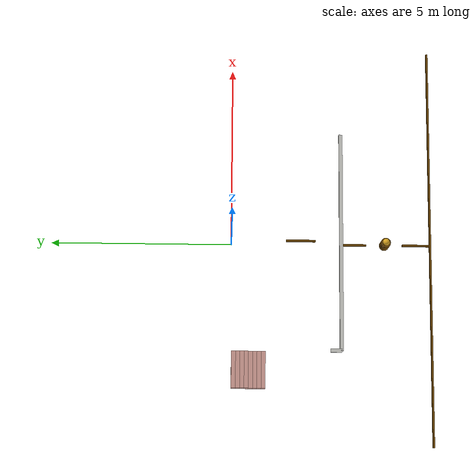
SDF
<sdf version="1.7">
 <world name="robocon2027_arena">
  <model name="mustika_pillar">
   <static>1</static>
   <pose>0 -4.25 0.25 0 -0 0</pose>
   <link name="link">
    <collision name="col">
     <geometry><cylinder><radius>0.135</radius><length>0.5</length></cylinder></geometry>
    </collision>
    <visual name="vis">
     <geometry><cylinder><radius>0.135</radius><length>0.5</length></cylinder></geometry>
     <material>
      <ambient>0.392 0.243 0 1</ambient>
      <diffuse>0.392 0.243 0 1</diffuse>
      <specular>0.04 0.04 0.04 1</specular>
      <emissive>0 0 0 1</emissive>
     </material>
    </visual>
   </link>
  </model>
  <model name="mustika_ball">
   <static>1</static>
   <pose>0 -4.25 0.6 0 -0 0</pose>
   <link name="link">
    <inertial>
     <mass>0.27</mass>
     <inertia><ixx>0.00108</ixx><iyy>0.00108</iyy><izz>0.00108</izz><ixy>0</ixy><ixz>0</ixz><iyz>0</iyz></inertia>
    </inertial>
    <collision name="col"><geometry><sphere><radius>0.1</radius></sphere></geometry></collision>
    <visual name="vis">
     <geometry><sphere><radius>0.1</radius></sphere></geometry>
     <material>
      <ambient>0.855 0.647 0.125 1</ambient>
      <diffuse>0.855 0.647 0.125 1</diffuse>
      <specular>0.04 0.04 0.04 1</specular>
      <emissive>0 0 0 1</emissive>
     </material>
    </visual>
   </link>
  </model>
  <model name="fence_pS">
   <static>1</static>
   <pose>0 -5.525 0.05 0 -0 0</pose>
   <link name="link">
    <collision name="col"><geometry><box><size>11.1 0.05 0.1</size></box></geometry></collision>
    <visual name="vis">
     <geometry><box><size>11.1 0.05 0.1</size></box></geometry>
     <material>
      <ambient>0.392 0.243 0 1</ambient>
      <diffuse>0.392 0.243 0 1</diffuse>
      <specular>0.04 0.04 0.04 1</specular>
      <emissive>0 0 0 1</emissive>
     </material>
    </visual>
   </link>
  </model>
  <model name="gdiv_2">
   <static>1</static>
   <pose>0 -3.375 0.05 0 -0 0</pose>
   <link name="link">
    <collision name="col"><geometry><box><size>0.05 0.75 0.1</size></box></geometry></collision>
    <visual name="vis">
     <geometry><box><size>0.05 0.75 0.1</size></box></geometry>
     <material>
      <ambient>0.392 0.243 0 1</ambient>
      <diffuse>0.392 0.243 0 1</diffuse>
      <specular>0.04 0.04 0.04 1</specular>
      <emissive>0 0 0 1</emissive>
     </material>
    </visual>
   </link>
  </model>
  <model name="gdiv_3">
   <static>1</static>
   <pose>0 -5.125 0.05 0 -0 0</pose>
   <link name="link">
    <collision name="col"><geometry><box><size>0.05 0.75 0.1</size></box></geometry></collision>
    <visual name="vis">
     <geometry><box><size>0.05 0.75 0.1</size></box></geometry>
     <material>
      <ambient>0.392 0.243 0 1</ambient>
      <diffuse>0.392 0.243 0 1</diffuse>
      <specular>0.04 0.04 0.04 1</specular>
      <emissive>0 0 0 1</emissive>
     </material>
    </visual>
   </link>
  </model>
  <model name="ddiv_1">
   <static>1</static>
   <pose>0 -1.9 0.65 0 -0 0</pose>
   <link name="link">
    <collision name="col"><geometry><box><size>0.05 0.8 0.1</size></box></geometry></collision>
    <visual name="vis">
     <geometry><box><size>0.05 0.8 0.1</size></box></geometry>
     <material>
      <ambient>0.392 0.243 0 1</ambient>
      <diffuse>0.392 0.243 0 1</diffuse>
      <specular>0.04 0.04 0.04 1</specular>
      <emissive>0 0 0 1</emissive>
     </material>
    </visual>
   </link>
  </model>
  <model name="rampsup_red_15">
   <static>1</static>
   <pose>-3.5 -0.8917 0.155 0 -0 0</pose>
   <link name="link">
    <collision name="col"><geometry><box><size>1 0.118667 0.31</size></box></geometry></collision>
    <visual name="vis">
     <geometry><box><size>1 0.118667 0.31</size></box></geometry>
     <material>
      <ambient>0.784 0.588 0.549 1</ambient>
      <diffuse>0.784 0.588 0.549 1</diffuse>
      <specular>0.04 0.04 0.04 1</specular>
      <emissive>0 0 0 1</emissive>
     </material>
    </visual>
   </link>
  </model>
  <model name="rampsup_red_16">
   <static>1</static>
   <pose>-3.5 -0.775 0.165 0 -0 0</pose>
   <link name="link">
    <collision name="col"><geometry><box><size>1 0.118667 0.33</size></box></geometry></collision>
    <visual name="vis">
     <geometry><box><size>1 0.118667 0.33</size></box></geometry>
     <material>
      <ambient>0.784 0.588 0.549 1</ambient>
      <diffuse>0.784 0.588 0.549 1</diffuse>
      <specular>0.04 0.04 0.04 1</specular>
      <emissive>0 0 0 1</emissive>
     </material>
    </visual>
   </link>
  </model>
  <model name="rampsup_red_17">
   <static>1</static>
   <pose>-3.5 -0.6583 0.175 0 -0 0</pose>
   <link name="link">
    <collision name="col"><geometry><box><size>1 0.118667 0.35</size></box></geometry></collision>
    <visual name="vis">
     <geometry><box><size>1 0.118667 0.35</size></box></geometry>
     <material>
      <ambient>0.784 0.588 0.549 1</ambient>
      <diffuse>0.784 0.588 0.549 1</diffuse>
      <specular>0.04 0.04 0.04 1</specular>
      <emissive>0 0 0 1</emissive>
     </material>
    </visual>
   </link>
  </model>
  <model name="rampsup_red_18">
   <static>1</static>
   <pose>-3.5 -0.5417 0.185 0 -0 0</pose>
   <link name="link">
    <collision name="col"><geometry><box><size>1 0.118667 0.37</size></box></geometry></collision>
    <visual name="vis">
     <geometry><box><size>1 0.118667 0.37</size></box></geometry>
     <material>
      <ambient>0.784 0.588 0.549 1</ambient>
      <diffuse>0.784 0.588 0.549 1</diffuse>
      <specular>0.04 0.04 0.04 1</specular>
      <emissive>0 0 0 1</emissive>
     </material>
    </visual>
   </link>
  </model>
  <model name="rampsup_red_19">
   <static>1</static>
   <pose>-3.5 -0.425 0.195 0 -0 0</pose>
   <link name="link">
    <collision name="col"><geometry><box><size>1 0.118667 0.39</size></box></geometry></collision>
    <visual name="vis">
     <geometry><box><size>1 0.118667 0.39</size></box></geometry>
     <material>
      <ambient>0.784 0.588 0.549 1</ambient>
      <diffuse>0.784 0.588 0.549 1</diffuse>
      <specular>0.04 0.04 0.04 1</specular>
      <emissive>0 0 0 1</emissive>
     </material>
    </visual>
   </link>
  </model>
  <model name="rampsup_red_20">
   <static>1</static>
   <pose>-3.5 -0.3083 0.205 0 -0 0</pose>
   <link name="link">
    <collision name="col"><geometry><box><size>1 0.118667 0.41</size></box></geometry></collision>
    <visual name="vis">
     <geometry><box><size>1 0.118667 0.41</size></box></geometry>
     <material>
      <ambient>0.784 0.588 0.549 1</ambient>
      <diffuse>0.784 0.588 0.549 1</diffuse>
      <specular>0.04 0.04 0.04 1</specular>
      <emissive>0 0 0 1</emissive>
     </material>
    </visual>
   </link>
  </model>
  <model name="rampsup_red_21">
   <static>1</static>
   <pose>-3.5 -0.1917 0.215 0 -0 0</pose>
   <link name="link">
    <collision name="col"><geometry><box><size>1 0.118667 0.43</size></box></geometry></collision>
    <visual name="vis">
     <geometry><box><size>1 0.118667 0.43</size></box></geometry>
     <material>
      <ambient>0.784 0.588 0.549 1</ambient>
      <diffuse>0.784 0.588 0.549 1</diffuse>
      <specular>0.04 0.04 0.04 1</specular>
      <emissive>0 0 0 1</emissive>
     </material>
    </visual>
   </link>
  </model>
  <model name="rampsup_red_22">
   <static>1</static>
   <pose>-3.5 -0.075 0.225 0 -0 0</pose>
   <link name="link">
    <collision name="col"><geometry><box><size>1 0.118667 0.45</size></box></geometry></collision>
    <visual name="vis">
     <geometry><box><size>1 0.118667 0.45</size></box></geometry>
     <material>
      <ambient>0.784 0.588 0.549 1</ambient>
      <diffuse>0.784 0.588 0.549 1</diffuse>
      <specular>0.04 0.04 0.04 1</specular>
      <emissive>0 0 0 1</emissive>
     </material>
    </visual>
   </link>
  </model>
  <model name="rail_ns-">
   <static>1</static>
   <pose>0 -3 0.65 0 -0 0</pose>
   <link name="link">
    <collision name="col"><geometry><box><size>6 0.1 0.1</size></box></geometry></collision>
    <visual name="vis">
     <geometry><box><size>6 0.1 0.1</size></box></geometry>
     <material>
      <ambient>0.745 0.745 0.725 1</ambient>
      <diffuse>0.745 0.745 0.725 1</diffuse>
      <specular>0.04 0.04 0.04 1</specular>
      <emissive>0 0 0 1</emissive>
     </material>
    </visual>
   </link>
  </model>
  <model name="rail_we_-_0">
   <static>1</static>
   <pose>-3 -2.85 0.65 0 -0 0</pose>
   <link name="link">
    <collision name="col"><geometry><box><size>0.1 0.3 0.1</size></box></geometry></collision>
    <visual name="vis">
     <geometry><box><size>0.1 0.3 0.1</size></box></geometry>
     <material>
      <ambient>0.745 0.745 0.725 1</ambient>
      <diffuse>0.745 0.745 0.725 1</diffuse>
      <specular>0.04 0.04 0.04 1</specular>
      <emissive>0 0 0 1</emissive>
     </material>
    </visual>
   </link>
  </model>
 </world>
</sdf>
